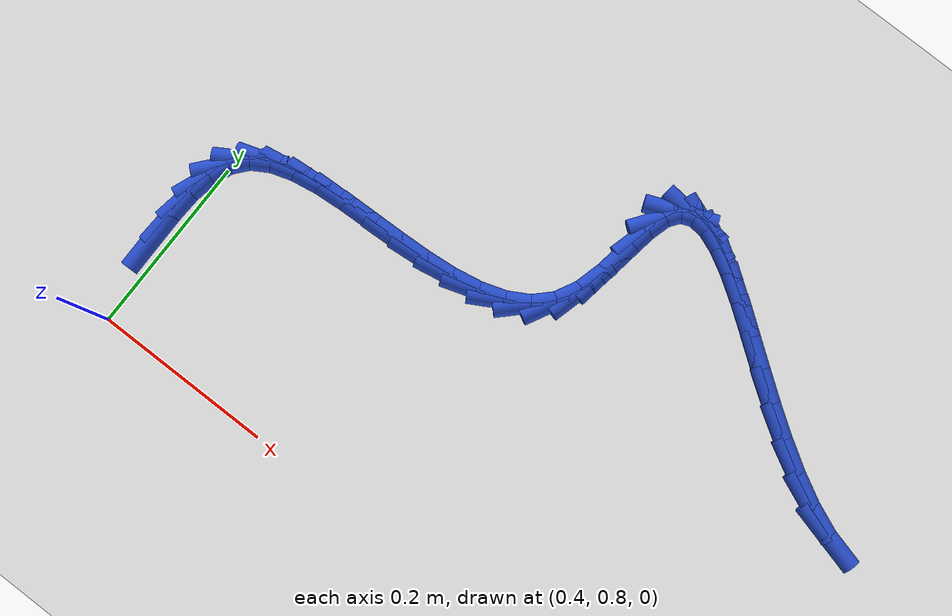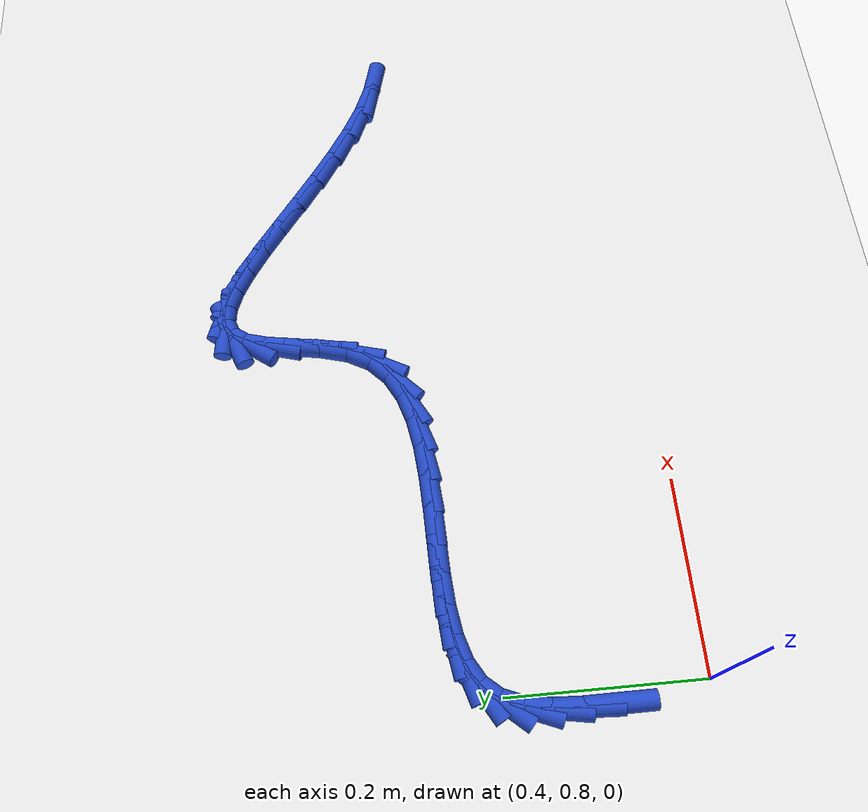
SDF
<sdf version="1.6">
 <world name="default">
  <model name="ground_plane">
   <static>1</static>
   <link name="link">
    <collision name="collision">
     <geometry><plane><normal>0 0 1</normal><size>100 100</size></plane></geometry>
     <surface><friction><ode><mu>100</mu><mu2>50</mu2></ode></friction></surface>
    </collision>
    <visual name="visual">
     <cast_shadows>0</cast_shadows>
     <geometry><plane><normal>0 0 1</normal><size>100 100</size></plane></geometry>
     <material>
      <script><uri>file://media/materials/scripts/gazebo.material</uri><name>Gazebo/WhiteGlow</name></script>
     </material>
    </visual>
   </link>
  </model>
  <model name="line">
   <link name="link_35">
    <pose>0.38486333109650434 0.8957140518423091 0.01 0 1.57 -1.5651056361236841</pose>
    <collision name="collision">
     <geometry><cylinder><radius>0.01</radius><length>0.08</length></cylinder></geometry>
    </collision>
    <visual name="visual">
     <material>
      <script><name>Gazebo/Blue</name><uri>file://media/materials/scripts/gazebo.material</uri></script>
     </material>
     <geometry><cylinder><radius>0.01</radius><length>0.08</length></cylinder></geometry>
    </visual>
   </link>
   <link name="link_36">
    <pose>0.38468600428770927 0.9268745743262523 0.01 0 1.57 1.523873844978217</pose>
    <collision name="collision">
     <geometry><cylinder><radius>0.01</radius><length>0.08</length></cylinder></geometry>
    </collision>
    <visual name="visual">
     <material>
      <script><name>Gazebo/Blue</name><uri>file://media/materials/scripts/gazebo.material</uri></script>
     </material>
     <geometry><cylinder><radius>0.01</radius><length>0.08</length></cylinder></geometry>
    </visual>
   </link>
   <link name="link_37">
    <pose>0.3860601340464434 0.956138182618994 0.01 0 1.57 1.407305123349168</pose>
    <collision name="collision">
     <geometry><cylinder><radius>0.01</radius><length>0.08</length></cylinder></geometry>
    </collision>
    <visual name="visual">
     <material>
      <script><name>Gazebo/Blue</name><uri>file://media/materials/scripts/gazebo.material</uri></script>
     </material>
     <geometry><cylinder><radius>0.01</radius><length>0.08</length></cylinder></geometry>
    </visual>
   </link>
   <link name="link_38">
    <pose>0.3903954002601905 0.9824183175758252 0.01 0 1.57 1.1972163033865266</pose>
    <collision name="collision">
     <geometry><cylinder><radius>0.01</radius><length>0.08</length></cylinder></geometry>
    </collision>
    <visual name="visual">
     <material>
      <script><name>Gazebo/Blue</name><uri>file://media/materials/scripts/gazebo.material</uri></script>
     </material>
     <geometry><cylinder><radius>0.01</radius><length>0.08</length></cylinder></geometry>
    </visual>
   </link>
   <link name="link_39">
    <pose>0.39910148281643476 1.0046284200520372 0.01 0 1.57 0.8710041887118876</pose>
    <collision name="collision">
     <geometry><cylinder><radius>0.01</radius><length>0.08</length></cylinder></geometry>
    </collision>
    <visual name="visual">
     <material>
      <script><name>Gazebo/Blue</name><uri>file://media/materials/scripts/gazebo.material</uri></script>
     </material>
     <geometry><cylinder><radius>0.01</radius><length>0.08</length></cylinder></geometry>
    </visual>
   </link>
   <link name="link_40">
    <pose>0.41351301395609796 1.021745612515842 0.01 0 1.57 0.538513415247076</pose>
    <collision name="collision">
     <geometry><cylinder><radius>0.01</radius><length>0.08</length></cylinder></geometry>
    </collision>
    <visual name="visual">
     <material>
      <script><name>Gazebo/Blue</name><uri>file://media/materials/scripts/gazebo.material</uri></script>
     </material>
     <geometry><cylinder><radius>0.01</radius><length>0.08</length></cylinder></geometry>
    </visual>
   </link>
   <link name="link_41">
    <pose>0.4337100839562882 1.0338115578893134 0.01 0 1.57 0.3071287312632298</pose>
    <collision name="collision">
     <geometry><cylinder><radius>0.01</radius><length>0.08</length></cylinder></geometry>
    </collision>
    <visual name="visual">
     <material>
      <script><name>Gazebo/Blue</name><uri>file://media/materials/scripts/gazebo.material</uri></script>
     </material>
     <geometry><cylinder><radius>0.01</radius><length>0.08</length></cylinder></geometry>
    </visual>
   </link>
   <link name="link_42">
    <pose>0.458734962007678 1.0417485612430142 0.01 0 1.57 0.16333557807781535</pose>
    <collision name="collision">
     <geometry><cylinder><radius>0.01</radius><length>0.08</length></cylinder></geometry>
    </collision>
    <visual name="visual">
     <material>
      <script><name>Gazebo/Blue</name><uri>file://media/materials/scripts/gazebo.material</uri></script>
     </material>
     <geometry><cylinder><radius>0.01</radius><length>0.08</length></cylinder></geometry>
    </visual>
   </link>
   <link name="link_43">
    <pose>0.48759870310117037 1.0465054144286154 0.01 0 1.57 0.07946659525231903</pose>
    <collision name="collision">
     <geometry><cylinder><radius>0.01</radius><length>0.08</length></cylinder></geometry>
    </collision>
    <visual name="visual">
     <material>
      <script><name>Gazebo/Blue</name><uri>file://media/materials/scripts/gazebo.material</uri></script>
     </material>
     <geometry><cylinder><radius>0.01</radius><length>0.08</length></cylinder></geometry>
    </visual>
   </link>
   <link name="link_44">
    <pose>0.5193123622276699 1.0490309092977899 0.01 0 1.57 0.037002968978884214</pose>
    <collision name="collision">
     <geometry><cylinder><radius>0.01</radius><length>0.08</length></cylinder></geometry>
    </collision>
    <visual name="visual">
     <material>
      <script><name>Gazebo/Blue</name><uri>file://media/materials/scripts/gazebo.material</uri></script>
     </material>
     <geometry><cylinder><radius>0.01</radius><length>0.08</length></cylinder></geometry>
    </visual>
   </link>
   <link name="link_45">
    <pose>0.5528869943780791 1.050273837702209 0.01 0 1.57 0.02638696381926445</pose>
    <collision name="collision">
     <geometry><cylinder><radius>0.01</radius><length>0.08</length></cylinder></geometry>
    </collision>
    <visual name="visual">
     <material>
      <script><name>Gazebo/Blue</name><uri>file://media/materials/scripts/gazebo.material</uri></script>
     </material>
     <geometry><cylinder><radius>0.01</radius><length>0.08</length></cylinder></geometry>
    </visual>
   </link>
   <link name="link_46">
    <pose>0.5873336545433022 1.0511829914935453 0.01 0 1.57 0.04436883588901307</pose>
    <collision name="collision">
     <geometry><cylinder><radius>0.01</radius><length>0.08</length></cylinder></geometry>
    </collision>
    <visual name="visual">
     <material>
      <script><name>Gazebo/Blue</name><uri>file://media/materials/scripts/gazebo.material</uri></script>
     </material>
     <geometry><cylinder><radius>0.01</radius><length>0.08</length></cylinder></geometry>
    </visual>
   </link>
   <link name="link_47">
    <pose>0.6216633977142424 1.052707162523471 0.01 0 1.57 0.0926783318782825</pose>
    <collision name="collision">
     <geometry><cylinder><radius>0.01</radius><length>0.08</length></cylinder></geometry>
    </collision>
    <visual name="visual">
     <material>
      <script><name>Gazebo/Blue</name><uri>file://media/materials/scripts/gazebo.material</uri></script>
     </material>
     <geometry><cylinder><radius>0.01</radius><length>0.08</length></cylinder></geometry>
    </visual>
   </link>
   <link name="link_48">
    <pose>0.6548872788818034 1.0557951426436576 0.01 0 1.57 0.1780104080934397</pose>
    <collision name="collision">
     <geometry><cylinder><radius>0.01</radius><length>0.08</length></cylinder></geometry>
    </collision>
    <visual name="visual">
     <material>
      <script><name>Gazebo/Blue</name><uri>file://media/materials/scripts/gazebo.material</uri></script>
     </material>
     <geometry><cylinder><radius>0.01</radius><length>0.08</length></cylinder></geometry>
    </visual>
   </link>
   <link name="link_49">
    <pose>0.6860163530368887 1.0613957237057778 0.01 0 1.57 0.3125295758366332</pose>
    <collision name="collision">
     <geometry><cylinder><radius>0.01</radius><length>0.08</length></cylinder></geometry>
    </collision>
    <visual name="visual">
     <material>
      <script><name>Gazebo/Blue</name><uri>file://media/materials/scripts/gazebo.material</uri></script>
     </material>
     <geometry><cylinder><radius>0.01</radius><length>0.08</length></cylinder></geometry>
    </visual>
   </link>
   <link name="link_50">
    <pose>0.7140616751704021 1.0704576975615034 0.01 0 1.57 0.5119950756194789</pose>
    <collision name="collision">
     <geometry><cylinder><radius>0.01</radius><length>0.08</length></cylinder></geometry>
    </collision>
    <visual name="visual">
     <material>
      <script><name>Gazebo/Blue</name><uri>file://media/materials/scripts/gazebo.material</uri></script>
     </material>
     <geometry><cylinder><radius>0.01</radius><length>0.08</length></cylinder></geometry>
    </visual>
   </link>
   <link name="link_51">
    <pose>0.7380343002732463 1.083929856062506 0.01 0 1.57 0.7832825442933845</pose>
    <collision name="collision">
     <geometry><cylinder><radius>0.01</radius><length>0.08</length></cylinder></geometry>
    </collision>
    <visual name="visual">
     <material>
      <script><name>Gazebo/Blue</name><uri>file://media/materials/scripts/gazebo.material</uri></script>
     </material>
     <geometry><cylinder><radius>0.01</radius><length>0.08</length></cylinder></geometry>
    </visual>
   </link>
   <link name="link_52">
    <pose>0.7569452833363259 1.1027609910604586 0.01 0 1.57 1.093611160135322</pose>
    <collision name="collision">
     <geometry><cylinder><radius>0.01</radius><length>0.08</length></cylinder></geometry>
    </collision>
    <visual name="visual">
     <material>
      <script><name>Gazebo/Blue</name><uri>file://media/materials/scripts/gazebo.material</uri></script>
     </material>
     <geometry><cylinder><radius>0.01</radius><length>0.08</length></cylinder></geometry>
    </visual>
   </link>
   <link name="link_53">
    <pose>0.7698869036961941 1.1277912836832347 0.01 0 1.57 1.3171710842812099</pose>
    <collision name="collision">
     <geometry><cylinder><radius>0.01</radius><length>0.08</length></cylinder></geometry>
    </collision>
    <visual name="visual">
     <material>
      <script><name>Gazebo/Blue</name><uri>file://media/materials/scripts/gazebo.material</uri></script>
     </material>
     <geometry><cylinder><radius>0.01</radius><length>0.08</length></cylinder></geometry>
    </visual>
   </link>
   <link name="link_54">
    <pose>0.7776209293300023 1.1576285256417682 0.01 0 1.57 1.4162436817964565</pose>
    <collision name="collision">
     <geometry><cylinder><radius>0.01</radius><length>0.08</length></cylinder></geometry>
    </collision>
    <visual name="visual">
     <material>
      <script><name>Gazebo/Blue</name><uri>file://media/materials/scripts/gazebo.material</uri></script>
     </material>
     <geometry><cylinder><radius>0.01</radius><length>0.08</length></cylinder></geometry>
    </visual>
   </link>
   <link name="link_55">
    <pose>0.7824751785154104 1.1887864338313676 0.01 0 1.57 1.421023795153077</pose>
    <collision name="collision">
     <geometry><cylinder><radius>0.01</radius><length>0.08</length></cylinder></geometry>
    </collision>
    <visual name="visual">
     <material>
      <script><name>Gazebo/Blue</name><uri>file://media/materials/scripts/gazebo.material</uri></script>
     </material>
     <geometry><cylinder><radius>0.01</radius><length>0.08</length></cylinder></geometry>
    </visual>
   </link>
   <link name="link_56">
    <pose>0.7868379796734247 1.217697812824643 0.01 0 1.57 1.3061439129063204</pose>
    <collision name="collision">
     <geometry><cylinder><radius>0.01</radius><length>0.08</length></cylinder></geometry>
    </collision>
    <visual name="visual">
     <material>
      <script><name>Gazebo/Blue</name><uri>file://media/materials/scripts/gazebo.material</uri></script>
     </material>
     <geometry><cylinder><radius>0.01</radius><length>0.08</length></cylinder></geometry>
    </visual>
   </link>
   <link name="link_57">
    <pose>0.7930976612250524 1.2407954671942054 0.01 0 1.57 0.9519212778368862</pose>
    <collision name="collision">
     <geometry><cylinder><radius>0.01</radius><length>0.08</length></cylinder></geometry>
    </collision>
    <visual name="visual">
     <material>
      <script><name>Gazebo/Blue</name><uri>file://media/materials/scripts/gazebo.material</uri></script>
     </material>
     <geometry><cylinder><radius>0.01</radius><length>0.08</length></cylinder></geometry>
    </visual>
   </link>
   <link name="link_58">
    <pose>0.8032892506888681 1.255105235192542 0.01 0 1.57 0.37667151292999956</pose>
    <collision name="collision">
     <geometry><cylinder><radius>0.01</radius><length>0.08</length></cylinder></geometry>
    </collision>
    <visual name="visual">
     <material>
      <script><name>Gazebo/Blue</name><uri>file://media/materials/scripts/gazebo.material</uri></script>
     </material>
     <geometry><cylinder><radius>0.01</radius><length>0.08</length></cylinder></geometry>
    </visual>
   </link>
   <link name="link_59">
    <pose>0.8175944889934978 1.2607637916387517 0.01 0 1.57 -0.10186619009313393</pose>
    <collision name="collision">
     <geometry><cylinder><radius>0.01</radius><length>0.08</length></cylinder></geometry>
    </collision>
    <visual name="visual">
     <material>
      <script><name>Gazebo/Blue</name><uri>file://media/materials/scripts/gazebo.material</uri></script>
     </material>
     <geometry><cylinder><radius>0.01</radius><length>0.08</length></cylinder></geometry>
    </visual>
   </link>
   <link name="link_60">
    <pose>0.8355895184719175 1.2589243396461833 0.01 0 1.57 -0.3674410583578735</pose>
    <collision name="collision">
     <geometry><cylinder><radius>0.01</radius><length>0.08</length></cylinder></geometry>
    </collision>
    <visual name="visual">
     <material>
      <script><name>Gazebo/Blue</name><uri>file://media/materials/scripts/gazebo.material</uri></script>
     </material>
     <geometry><cylinder><radius>0.01</radius><length>0.08</length></cylinder></geometry>
    </visual>
   </link>
   <link name="link_61">
    <pose>0.8568501403320983 1.250740654923999 0.01 0 1.57 -0.506595307896519</pose>
    <collision name="collision">
     <geometry><cylinder><radius>0.01</radius><length>0.08</length></cylinder></geometry>
    </collision>
    <visual name="visual">
     <material>
      <script><name>Gazebo/Blue</name><uri>file://media/materials/scripts/gazebo.material</uri></script>
     </material>
     <geometry><cylinder><radius>0.01</radius><length>0.08</length></cylinder></geometry>
    </visual>
   </link>
   <link name="link_62">
    <pose>0.8809521557820098 1.2373665131813592 0.01 0 1.57 -0.5809564146101333</pose>
    <collision name="collision">
     <geometry><cylinder><radius>0.01</radius><length>0.08</length></cylinder></geometry>
    </collision>
    <visual name="visual">
     <material>
      <script><name>Gazebo/Blue</name><uri>file://media/materials/scripts/gazebo.material</uri></script>
     </material>
     <geometry><cylinder><radius>0.01</radius><length>0.08</length></cylinder></geometry>
    </visual>
   </link>
   <link name="link_63">
    <pose>0.9074713660296231 1.2199556901274262 0.01 0 1.57 -0.6185722783904792</pose>
    <collision name="collision">
     <geometry><cylinder><radius>0.01</radius><length>0.08</length></cylinder></geometry>
    </collision>
    <visual name="visual">
     <material>
      <script><name>Gazebo/Blue</name><uri>file://media/materials/scripts/gazebo.material</uri></script>
     </material>
     <geometry><cylinder><radius>0.01</radius><length>0.08</length></cylinder></geometry>
    </visual>
   </link>
   <link name="link_64">
    <pose>0.9359835722829082 1.1996619614713615 0.01 0 1.57 -0.6319583717431225</pose>
    <collision name="collision">
     <geometry><cylinder><radius>0.01</radius><length>0.08</length></cylinder></geometry>
    </collision>
    <visual name="visual">
     <material>
      <script><name>Gazebo/Blue</name><uri>file://media/materials/scripts/gazebo.material</uri></script>
     </material>
     <geometry><cylinder><radius>0.01</radius><length>0.08</length></cylinder></geometry>
    </visual>
   </link>
   <link name="link_65">
    <pose>0.966064575749836 1.1776391029223265 0.01 0 1.57 -0.6264606977421062</pose>
    <collision name="collision">
     <geometry><cylinder><radius>0.01</radius><length>0.08</length></cylinder></geometry>
    </collision>
    <visual name="visual">
     <material>
      <script><name>Gazebo/Blue</name><uri>file://media/materials/scripts/gazebo.material</uri></script>
     </material>
     <geometry><cylinder><radius>0.01</radius><length>0.08</length></cylinder></geometry>
    </visual>
   </link>
   <link name="link_66">
    <pose>0.9972901776383769 1.1550408901894822 0.01 0 1.57 -0.6034961304598243</pose>
    <collision name="collision">
     <geometry><cylinder><radius>0.01</radius><length>0.08</length></cylinder></geometry>
    </collision>
    <visual name="visual">
     <material>
      <script><name>Gazebo/Blue</name><uri>file://media/materials/scripts/gazebo.material</uri></script>
     </material>
     <geometry><cylinder><radius>0.01</radius><length>0.08</length></cylinder></geometry>
    </visual>
   </link>
   <link name="link_67">
    <pose>1.029236179156501 1.1330210989819909 0.01 0 1.57 -0.5616316210973511</pose>
    <collision name="collision">
     <geometry><cylinder><radius>0.01</radius><length>0.08</length></cylinder></geometry>
    </collision>
    <visual name="visual">
     <material>
      <script><name>Gazebo/Blue</name><uri>file://media/materials/scripts/gazebo.material</uri></script>
     </material>
     <geometry><cylinder><radius>0.01</radius><length>0.08</length></cylinder></geometry>
    </visual>
   </link>
   <link name="link_68">
    <pose>1.0614783815121795 1.1127335050090132 0.01 0 1.57 -0.49657747092633964</pose>
    <collision name="collision">
     <geometry><cylinder><radius>0.01</radius><length>0.08</length></cylinder></geometry>
    </collision>
    <visual name="visual">
     <material>
      <script><name>Gazebo/Blue</name><uri>file://media/materials/scripts/gazebo.material</uri></script>
     </material>
     <geometry><cylinder><radius>0.01</radius><length>0.08</length></cylinder></geometry>
    </visual>
   </link>
   <link name="link_69">
    <pose>1.0935925859133824 1.0953318839797113 0.01 0 1.57 -0.40047484395990823</pose>
    <collision name="collision">
     <geometry><cylinder><radius>0.01</radius><length>0.08</length></cylinder></geometry>
    </collision>
    <visual name="visual">
     <material>
      <script><name>Gazebo/Blue</name><uri>file://media/materials/scripts/gazebo.material</uri></script>
     </material>
     <geometry><cylinder><radius>0.01</radius><length>0.08</length></cylinder></geometry>
    </visual>
   </link>
   <link name="link_70">
    <pose>1.1251545935680807 1.0819700116032467 0.01 0 1.57 -0.2609742890456194</pose>
    <collision name="collision">
     <geometry><cylinder><radius>0.01</radius><length>0.08</length></cylinder></geometry>
    </collision>
    <visual name="visual">
     <material>
      <script><name>Gazebo/Blue</name><uri>file://media/materials/scripts/gazebo.material</uri></script>
     </material>
     <geometry><cylinder><radius>0.01</radius><length>0.08</length></cylinder></geometry>
    </visual>
   </link>
  </model>
 </world>
</sdf>
